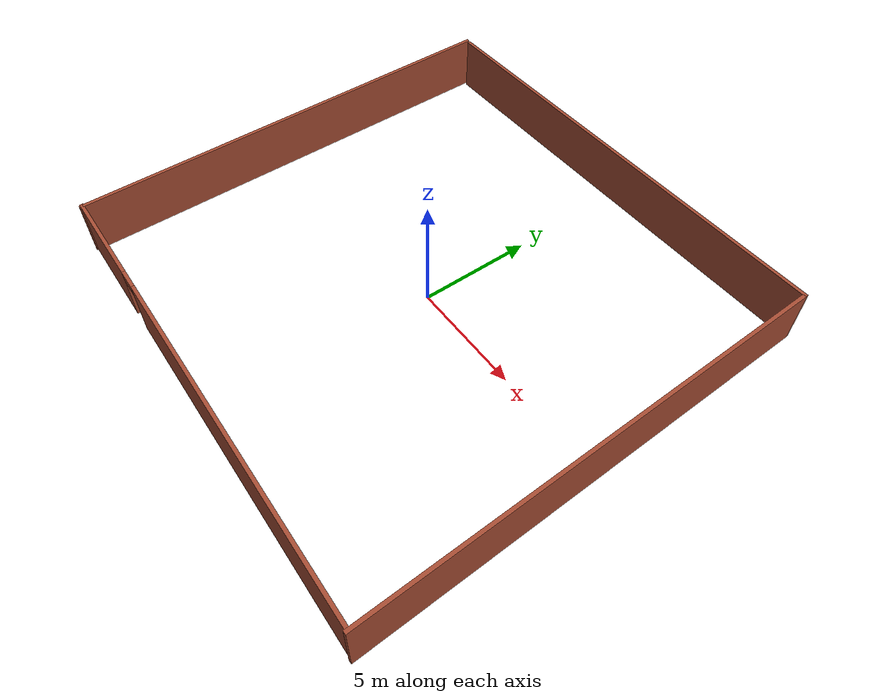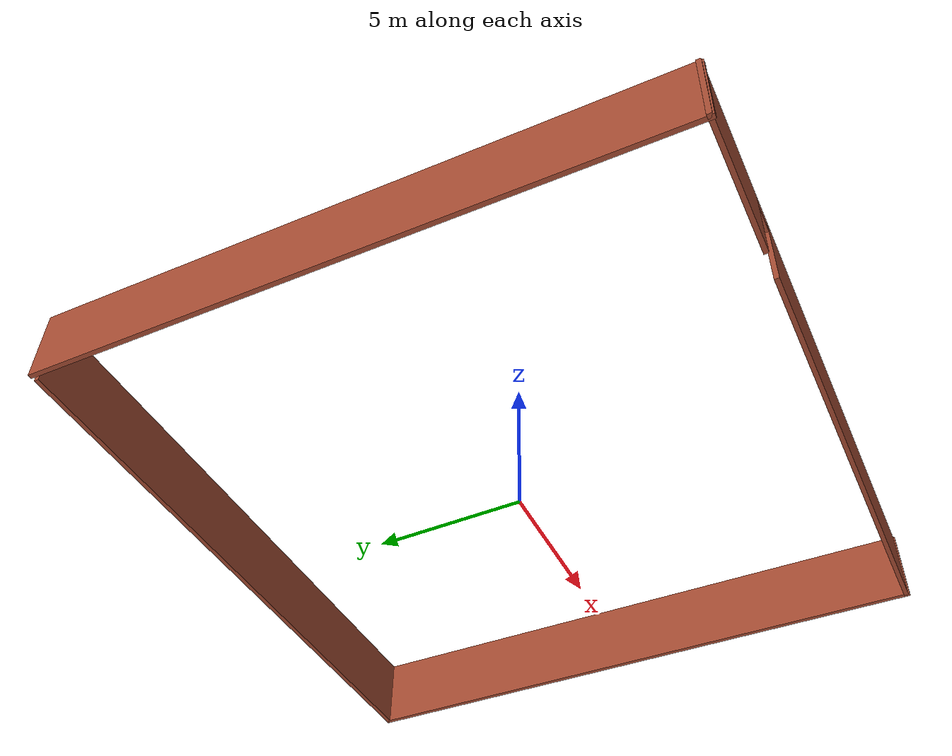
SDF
<?xml version='1.0'?>
<sdf version='1.6'>
  <model name='wall'>
    <pose frame=''>-0.342854 0.070258 0 0 -0 0</pose>
    <link name='Wall_0'>
      <collision name='Wall_0_Collision'>
        <geometry>
          <box>
            <size>20.5 0.15 2.5</size>
          </box>
        </geometry>
        <pose frame=''>0 0 1.25 0 -0 0</pose>
      </collision>
      <visual name='Wall_0_Visual'>
        <pose frame=''>0 0 1.25 0 -0 0</pose>
        <geometry>
          <box>
            <size>20.5 0.15 2.5</size>
          </box>
        </geometry>
        <material>
          <script>
            <uri>file://media/materials/scripts/gazebo.material</uri>
            <name>Gazebo/Bricks</name>
          </script>
          <ambient>0.996078 0.47451 0.0196078 1</ambient>
        </material>
      </visual>
      <pose frame=''>-0.037726 10.1555 0 0 -0 0</pose>
    </link>
    <link name='Wall_10'>
      <collision name='Wall_10_Collision'>
        <geometry>
          <box>
            <size>20.2577 0.15 2.5</size>
          </box>
        </geometry>
        <pose frame=''>0 0 1.25 0 -0 0</pose>
      </collision>
      <visual name='Wall_10_Visual'>
        <pose frame=''>0 0 1.25 0 -0 0</pose>
        <geometry>
          <box>
            <size>20.2577 0.15 2.5</size>
          </box>
        </geometry>
        <material>
          <script>
            <uri>file://media/materials/scripts/gazebo.material</uri>
            <name>Gazebo/Bricks</name>
          </script>
          <ambient>0.996078 0.47451 0.0196078 1</ambient>
        </material>
      </visual>
      <pose frame=''>-10.3205 0.107074 0 0 -0 1.58498</pose>
    </link>
    <link name='Wall_8'>
      <collision name='Wall_8_Collision'>
        <geometry>
          <box>
            <size>20.4678 0.15 2.5</size>
          </box>
        </geometry>
        <pose frame=''>0 0 1.25 0 -0 0</pose>
      </collision>
      <visual name='Wall_8_Visual'>
        <pose frame=''>0 0 1.25 0 -0 0</pose>
        <geometry>
          <box>
            <size>20.4678 0.15 2.5</size>
          </box>
        </geometry>
        <material>
          <script>
            <uri>file://media/materials/scripts/gazebo.material</uri>
            <name>Gazebo/Bricks</name>
          </script>
          <ambient>0.996078 0.47451 0.0196078 1</ambient>
        </material>
      </visual>
      <pose frame=''>10.3001 -0.002164 0 0 0 -1.55477</pose>
    </link>
    <link name='Wall_9'>
      <pose frame=''>0.096015 -10.0063 0 0 -0 3.13123</pose>
      <visual name='Wall_9_Visual_0'>
        <pose frame=''>-2.70518 0 1.25 0 -0 0</pose>
        <geometry>
          <box>
            <size>15.3815 0.15 2.5</size>
          </box>
        </geometry>
        <material>
          <script>
            <uri>file://media/materials/scripts/gazebo.material</uri>
            <name>Gazebo/Bricks</name>
          </script>
          <ambient>0.996078 0.47451 0.0196078 1</ambient>
        </material>
      </visual>
      <collision name='Wall_9_Collision_0'>
        <geometry>
          <box>
            <size>15.3815 0.15 2.5</size>
          </box>
        </geometry>
        <pose frame=''>-2.70518 0 1.25 0 -0 0</pose>
      </collision>
      <visual name='Wall_9_Visual_1'>
        <pose frame=''>8.14077 0 1.25 0 -0 0</pose>
        <geometry>
          <box>
            <size>4.51037 0.15 2.5</size>
          </box>
        </geometry>
        <material>
          <script>
            <uri>file://media/materials/scripts/gazebo.material</uri>
            <name>Gazebo/Bricks</name>
          </script>
          <ambient>0.996078 0.47451 0.0196078 1</ambient>
        </material>
      </visual>
      <collision name='Wall_9_Collision_1'>
        <geometry>
          <box>
            <size>4.51037 0.15 2.5</size>
          </box>
        </geometry>
        <pose frame=''>8.14077 0 1.25 0 -0 0</pose>
      </collision>
      <visual name='Wall_9_Visual_2'>
        <pose frame=''>5.43559 0 2.25 0 -0 0</pose>
        <geometry>
          <box>
            <size>0.9 0.15 0.5</size>
          </box>
        </geometry>
        <material>
          <script>
            <uri>file://media/materials/scripts/gazebo.material</uri>
            <name>Gazebo/Bricks</name>
          </script>
          <ambient>0.996078 0.47451 0.0196078 1</ambient>
        </material>
      </visual>
      <collision name='Wall_9_Collision_2'>
        <geometry>
          <box>
            <size>0.9 0.15 0.5</size>
          </box>
        </geometry>
        <pose frame=''>5.43559 0 2.25 0 -0 0</pose>
      </collision>
    </link>
    <static>1</static>
  </model>
</sdf>
